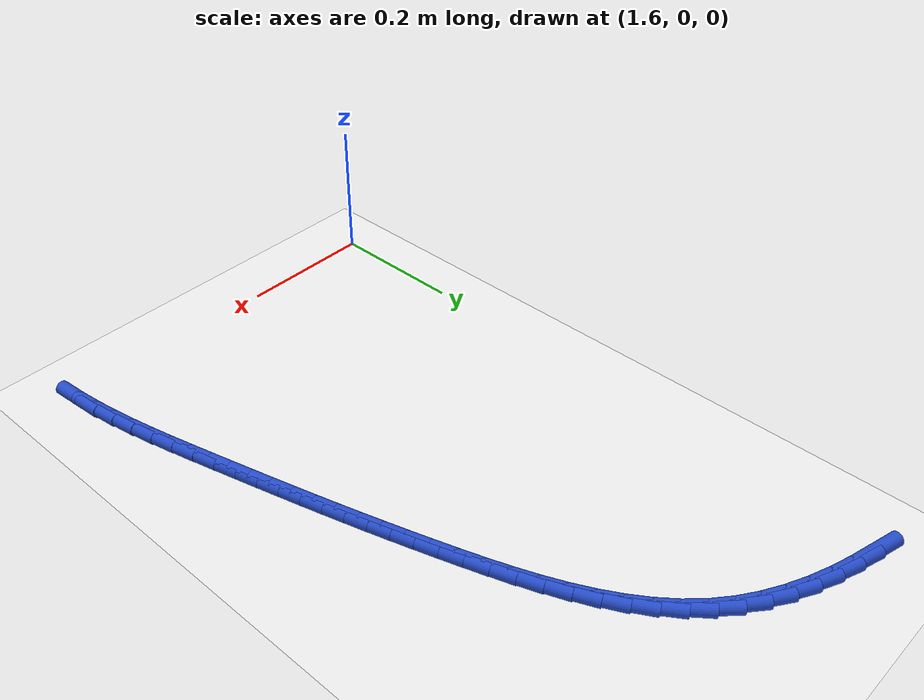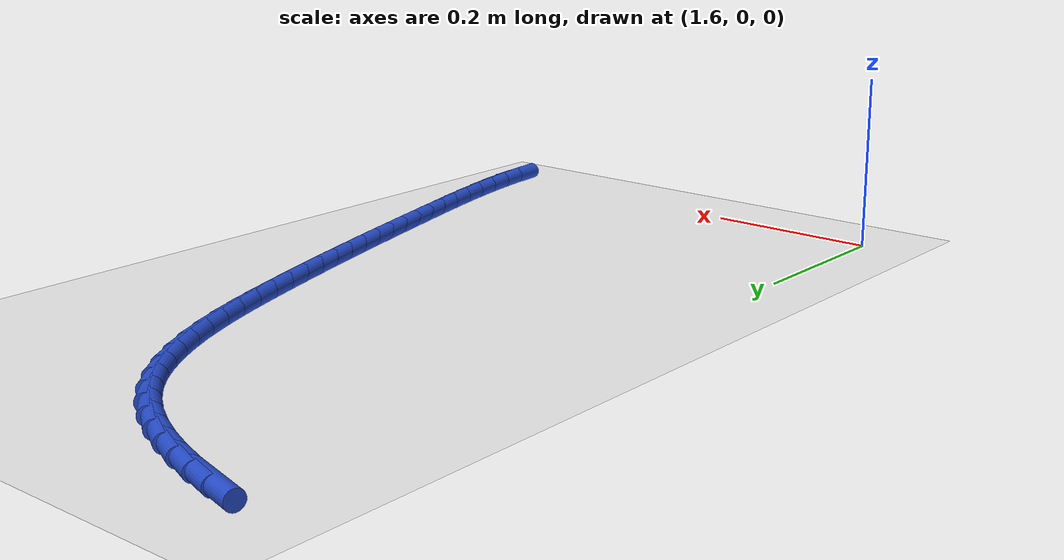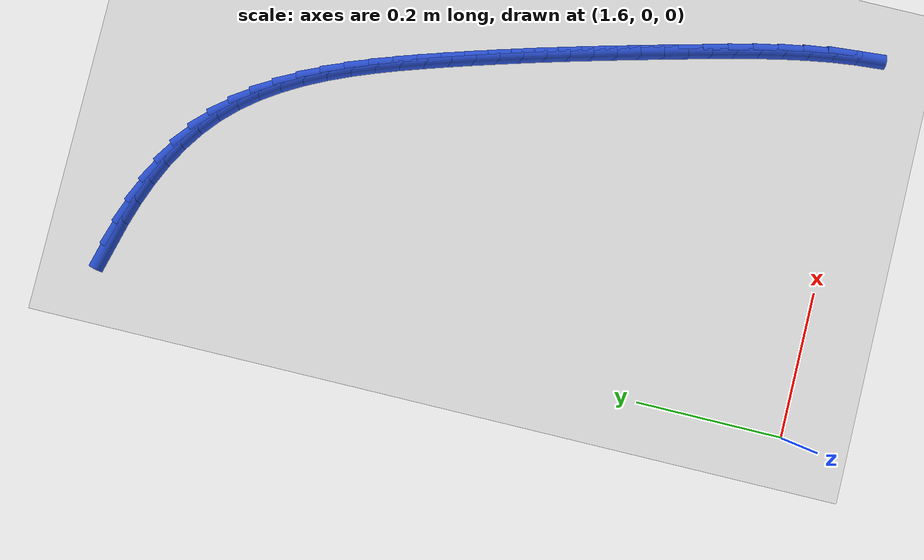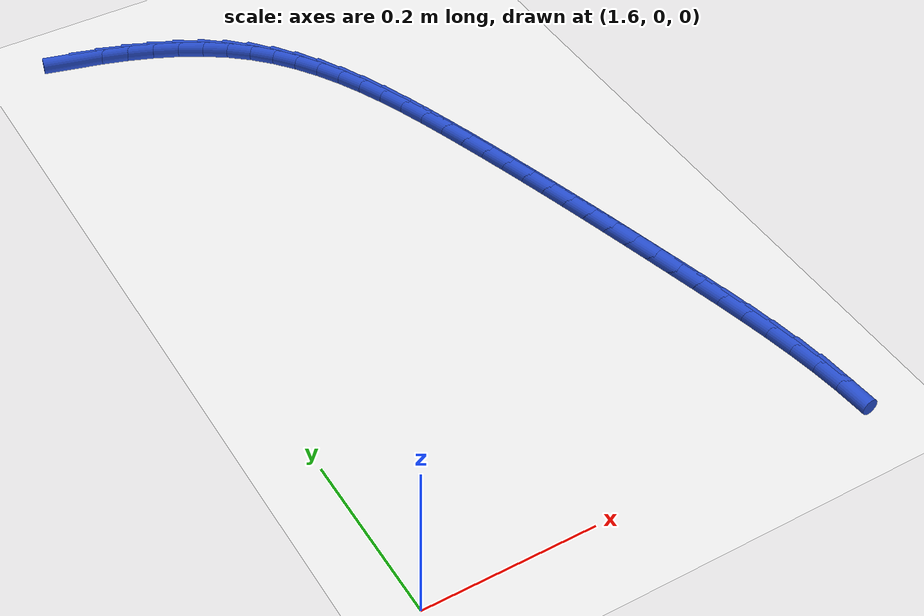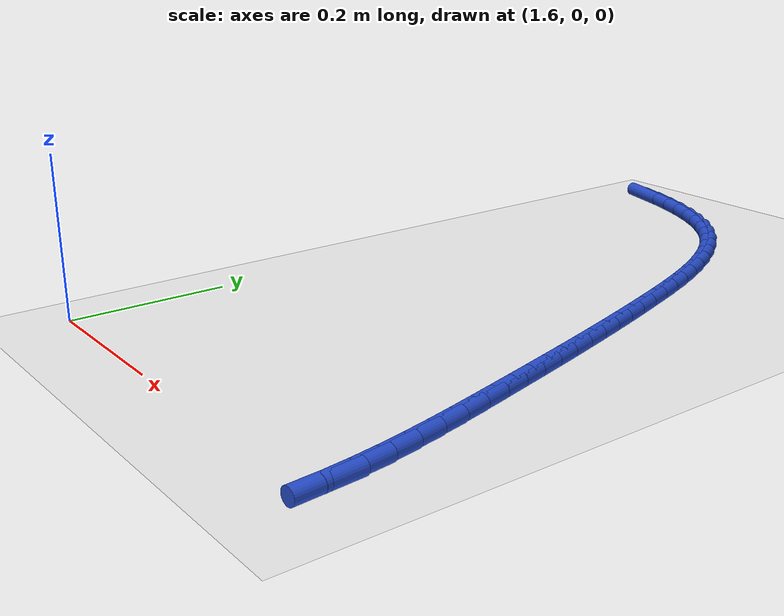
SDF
<sdf version="1.6">
 <world name="default">
  <model name="ground_plane">
   <static>1</static>
   <link name="link">
    <collision name="collision">
     <geometry><plane><normal>0 0 1</normal><size>100 100</size></plane></geometry>
     <surface><friction><ode><mu>100</mu><mu2>50</mu2></ode></friction></surface>
    </collision>
    <visual name="visual">
     <cast_shadows>0</cast_shadows>
     <geometry><plane><normal>0 0 1</normal><size>100 100</size></plane></geometry>
     <material>
      <script><uri>file://media/materials/scripts/gazebo.material</uri><name>Gazebo/WhiteGlow</name></script>
     </material>
    </visual>
   </link>
  </model>
  <model name="line">
   <link name="link_70">
    <pose>1.6430786663684256 0.9417009890963415 0.01 0 1.57 -0.2524663910348437</pose>
    <collision name="collision">
     <geometry><cylinder><radius>0.01</radius><length>0.08</length></cylinder></geometry>
    </collision>
    <visual name="visual">
     <material>
      <script><name>Gazebo/Blue</name><uri>file://media/materials/scripts/gazebo.material</uri></script>
     </material>
     <geometry><cylinder><radius>0.01</radius><length>0.08</length></cylinder></geometry>
    </visual>
   </link>
   <link name="link_71">
    <pose>1.6753227220631297 0.9333829648782509 0.01 0 1.57 -0.3049659807308782</pose>
    <collision name="collision">
     <geometry><cylinder><radius>0.01</radius><length>0.08</length></cylinder></geometry>
    </collision>
    <visual name="visual">
     <material>
      <script><name>Gazebo/Blue</name><uri>file://media/materials/scripts/gazebo.material</uri></script>
     </material>
     <geometry><cylinder><radius>0.01</radius><length>0.08</length></cylinder></geometry>
    </visual>
   </link>
   <link name="link_72">
    <pose>1.7069149437839555 0.9234381809567971 0.01 0 1.57 -0.3648308515365833</pose>
    <collision name="collision">
     <geometry><cylinder><radius>0.01</radius><length>0.08</length></cylinder></geometry>
    </collision>
    <visual name="visual">
     <material>
      <script><name>Gazebo/Blue</name><uri>file://media/materials/scripts/gazebo.material</uri></script>
     </material>
     <geometry><cylinder><radius>0.01</radius><length>0.08</length></cylinder></geometry>
    </visual>
   </link>
   <link name="link_73">
    <pose>1.7375704813057076 0.911729965957451 0.01 0 1.57 -0.43306276915349406</pose>
    <collision name="collision">
     <geometry><cylinder><radius>0.01</radius><length>0.08</length></cylinder></geometry>
    </collision>
    <visual name="visual">
     <material>
      <script><name>Gazebo/Blue</name><uri>file://media/materials/scripts/gazebo.material</uri></script>
     </material>
     <geometry><cylinder><radius>0.01</radius><length>0.08</length></cylinder></geometry>
    </visual>
   </link>
   <link name="link_74">
    <pose>1.7670044844031894 0.898121648505685 0.01 0 1.57 -0.5106416367463223</pose>
    <collision name="collision">
     <geometry><cylinder><radius>0.01</radius><length>0.08</length></cylinder></geometry>
    </collision>
    <visual name="visual">
     <material>
      <script><name>Gazebo/Blue</name><uri>file://media/materials/scripts/gazebo.material</uri></script>
     </material>
     <geometry><cylinder><radius>0.01</radius><length>0.08</length></cylinder></geometry>
    </visual>
   </link>
   <link name="link_75">
    <pose>1.7949321028512037 0.8824765572269694 0.01 0 1.57 -0.5983738358917429</pose>
    <collision name="collision">
     <geometry><cylinder><radius>0.01</radius><length>0.08</length></cylinder></geometry>
    </collision>
    <visual name="visual">
     <material>
      <script><name>Gazebo/Blue</name><uri>file://media/materials/scripts/gazebo.material</uri></script>
     </material>
     <geometry><cylinder><radius>0.01</radius><length>0.08</length></cylinder></geometry>
    </visual>
   </link>
   <link name="link_76">
    <pose>1.8210684864245552 0.8646580207467754 0.01 0 1.57 -0.6966565141751326</pose>
    <collision name="collision">
     <geometry><cylinder><radius>0.01</radius><length>0.08</length></cylinder></geometry>
    </collision>
    <visual name="visual">
     <material>
      <script><name>Gazebo/Blue</name><uri>file://media/materials/scripts/gazebo.material</uri></script>
     </material>
     <geometry><cylinder><radius>0.01</radius><length>0.08</length></cylinder></geometry>
    </visual>
   </link>
   <link name="link_77">
    <pose>1.8451288285941922 0.8445294058192063 0.01 0 1.57 -0.800853707199921</pose>
    <collision name="collision">
     <geometry><cylinder><radius>0.01</radius><length>0.08</length></cylinder></geometry>
    </collision>
    <visual name="visual">
     <material>
      <script><name>Gazebo/Blue</name><uri>file://media/materials/scripts/gazebo.material</uri></script>
     </material>
     <geometry><cylinder><radius>0.01</radius><length>0.08</length></cylinder></geometry>
    </visual>
   </link>
   <link name="link_78">
    <pose>1.8669304731799221 0.8220432141323843 0.01 0 1.57 -0.896264361814733</pose>
    <collision name="collision">
     <geometry><cylinder><radius>0.01</radius><length>0.08</length></cylinder></geometry>
    </collision>
    <visual name="visual">
     <material>
      <script><name>Gazebo/Blue</name><uri>file://media/materials/scripts/gazebo.material</uri></script>
     </material>
     <geometry><cylinder><radius>0.01</radius><length>0.08</length></cylinder></geometry>
    </visual>
   </link>
   <link name="link_79">
    <pose>1.8866112982026828 0.7974316409358165 0.01 0 1.57 -0.9794710617785285</pose>
    <collision name="collision">
     <geometry><cylinder><radius>0.01</radius><length>0.08</length></cylinder></geometry>
    </collision>
    <visual name="visual">
     <material>
      <script><name>Gazebo/Blue</name><uri>file://media/materials/scripts/gazebo.material</uri></script>
     </material>
     <geometry><cylinder><radius>0.01</radius><length>0.08</length></cylinder></geometry>
    </visual>
   </link>
   <link name="link_80">
    <pose>1.9043718871836628 0.77098159740206 0.01 0 1.57 -1.0505734589829416</pose>
    <collision name="collision">
     <geometry><cylinder><radius>0.01</radius><length>0.08</length></cylinder></geometry>
    </collision>
    <visual name="visual">
     <material>
      <script><name>Gazebo/Blue</name><uri>file://media/materials/scripts/gazebo.material</uri></script>
     </material>
     <geometry><cylinder><radius>0.01</radius><length>0.08</length></cylinder></geometry>
    </visual>
   </link>
   <link name="link_81">
    <pose>1.9204128236440527 0.7429799947036715 0.01 0 1.57 -1.1101946010710217</pose>
    <collision name="collision">
     <geometry><cylinder><radius>0.01</radius><length>0.08</length></cylinder></geometry>
    </collision>
    <visual name="visual">
     <material>
      <script><name>Gazebo/Blue</name><uri>file://media/materials/scripts/gazebo.material</uri></script>
     </material>
     <geometry><cylinder><radius>0.01</radius><length>0.08</length></cylinder></geometry>
    </visual>
   </link>
   <link name="link_82">
    <pose>1.9349346911050418 0.7137137440132076 0.01 0 1.57 -1.1591732860625918</pose>
    <collision name="collision">
     <geometry><cylinder><radius>0.01</radius><length>0.08</length></cylinder></geometry>
    </collision>
    <visual name="visual">
     <material>
      <script><name>Gazebo/Blue</name><uri>file://media/materials/scripts/gazebo.material</uri></script>
     </material>
     <geometry><cylinder><radius>0.01</radius><length>0.08</length></cylinder></geometry>
    </visual>
   </link>
   <link name="link_83">
    <pose>1.9481380730878202 0.6834697565032264 0.01 0 1.57 -1.1983538861379925</pose>
    <collision name="collision">
     <geometry><cylinder><radius>0.01</radius><length>0.08</length></cylinder></geometry>
    </collision>
    <visual name="visual">
     <material>
      <script><name>Gazebo/Blue</name><uri>file://media/materials/scripts/gazebo.material</uri></script>
     </material>
     <geometry><cylinder><radius>0.01</radius><length>0.08</length></cylinder></geometry>
    </visual>
   </link>
   <link name="link_84">
    <pose>1.9602235531135768 0.6525349433462837 0.01 0 1.57 -1.2284585722076924</pose>
    <collision name="collision">
     <geometry><cylinder><radius>0.01</radius><length>0.08</length></cylinder></geometry>
    </collision>
    <visual name="visual">
     <material>
      <script><name>Gazebo/Blue</name><uri>file://media/materials/scripts/gazebo.material</uri></script>
     </material>
     <geometry><cylinder><radius>0.01</radius><length>0.08</length></cylinder></geometry>
    </visual>
   </link>
   <link name="link_85">
    <pose>1.9713917147035023 0.6211962157149366 0.01 0 1.57 -1.2500136431465538</pose>
    <collision name="collision">
     <geometry><cylinder><radius>0.01</radius><length>0.08</length></cylinder></geometry>
    </collision>
    <visual name="visual">
     <material>
      <script><name>Gazebo/Blue</name><uri>file://media/materials/scripts/gazebo.material</uri></script>
     </material>
     <geometry><cylinder><radius>0.01</radius><length>0.08</length></cylinder></geometry>
    </visual>
   </link>
   <link name="link_86">
    <pose>1.9818431413787851 0.5897404847817422 0.01 0 1.57 -1.2633660580823134</pose>
    <collision name="collision">
     <geometry><cylinder><radius>0.01</radius><length>0.08</length></cylinder></geometry>
    </collision>
    <visual name="visual">
     <material>
      <script><name>Gazebo/Blue</name><uri>file://media/materials/scripts/gazebo.material</uri></script>
     </material>
     <geometry><cylinder><radius>0.01</radius><length>0.08</length></cylinder></geometry>
    </visual>
   </link>
   <link name="link_87">
    <pose>1.9917771959486954 0.5584517709949424 0.01 0 1.57 -1.2716342790600534</pose>
    <collision name="collision">
     <geometry><cylinder><radius>0.01</radius><length>0.08</length></cylinder></geometry>
    </collision>
    <visual name="visual">
     <material>
      <script><name>Gazebo/Blue</name><uri>file://media/materials/scripts/gazebo.material</uri></script>
     </material>
     <geometry><cylinder><radius>0.01</radius><length>0.08</length></cylinder></geometry>
    </visual>
   </link>
   <link name="link_88">
    <pose>2.0013324791103844 0.5274702062144678 0.01 0 1.57 -1.2791920324950457</pose>
    <collision name="collision">
     <geometry><cylinder><radius>0.01</radius><length>0.08</length></cylinder></geometry>
    </collision>
    <visual name="visual">
     <material>
      <script><name>Gazebo/Blue</name><uri>file://media/materials/scripts/gazebo.material</uri></script>
     </material>
     <geometry><cylinder><radius>0.01</radius><length>0.08</length></cylinder></geometry>
    </visual>
   </link>
   <link name="link_89">
    <pose>2.010559961263603 0.49672840812165353 0.01 0 1.57 -1.2863081202444147</pose>
    <collision name="collision">
     <geometry><cylinder><radius>0.01</radius><length>0.08</length></cylinder></geometry>
    </collision>
    <visual name="visual">
     <material>
      <script><name>Gazebo/Blue</name><uri>file://media/materials/scripts/gazebo.material</uri></script>
     </material>
     <geometry><cylinder><radius>0.01</radius><length>0.08</length></cylinder></geometry>
    </visual>
   </link>
   <link name="link_90">
    <pose>2.0195037915845955 0.46614284130197825 0.01 0 1.57 -1.2929098659598606</pose>
    <collision name="collision">
     <geometry><cylinder><radius>0.01</radius><length>0.08</length></cylinder></geometry>
    </collision>
    <visual name="visual">
     <material>
      <script><name>Gazebo/Blue</name><uri>file://media/materials/scripts/gazebo.material</uri></script>
     </material>
     <geometry><cylinder><radius>0.01</radius><length>0.08</length></cylinder></geometry>
    </visual>
   </link>
   <link name="link_91">
    <pose>2.0282081192496015 0.4356299703409211 0.01 0 1.57 -1.298932232212982</pose>
    <collision name="collision">
     <geometry><cylinder><radius>0.01</radius><length>0.08</length></cylinder></geometry>
    </collision>
    <visual name="visual">
     <material>
      <script><name>Gazebo/Blue</name><uri>file://media/materials/scripts/gazebo.material</uri></script>
     </material>
     <geometry><cylinder><radius>0.01</radius><length>0.08</length></cylinder></geometry>
    </visual>
   </link>
   <link name="link_92">
    <pose>2.0367170934348646 0.40510625982396126 0.01 0 1.57 -1.3043198552521753</pose>
    <collision name="collision">
     <geometry><cylinder><radius>0.01</radius><length>0.08</length></cylinder></geometry>
    </collision>
    <visual name="visual">
     <material>
      <script><name>Gazebo/Blue</name><uri>file://media/materials/scripts/gazebo.material</uri></script>
     </material>
     <geometry><cylinder><radius>0.01</radius><length>0.08</length></cylinder></geometry>
    </visual>
   </link>
   <link name="link_93">
    <pose>2.0450748633166267 0.3744881743365785 0.01 0 1.57 -1.309028673989975</pose>
    <collision name="collision">
     <geometry><cylinder><radius>0.01</radius><length>0.08</length></cylinder></geometry>
    </collision>
    <visual name="visual">
     <material>
      <script><name>Gazebo/Blue</name><uri>file://media/materials/scripts/gazebo.material</uri></script>
     </material>
     <geometry><cylinder><radius>0.01</radius><length>0.08</length></cylinder></geometry>
    </visual>
   </link>
   <link name="link_94">
    <pose>2.0533255780711293 0.3436921784642519 0.01 0 1.57 -1.313027056629133</pose>
    <collision name="collision">
     <geometry><cylinder><radius>0.01</radius><length>0.08</length></cylinder></geometry>
    </collision>
    <visual name="visual">
     <material>
      <script><name>Gazebo/Blue</name><uri>file://media/materials/scripts/gazebo.material</uri></script>
     </material>
     <geometry><cylinder><radius>0.01</radius><length>0.08</length></cylinder></geometry>
    </visual>
   </link>
   <link name="link_95">
    <pose>2.0615133868746147 0.31263473679246023 0.01 0 1.57 -1.3162963697528909</pose>
    <collision name="collision">
     <geometry><cylinder><radius>0.01</radius><length>0.08</length></cylinder></geometry>
    </collision>
    <visual name="visual">
     <material>
      <script><name>Gazebo/Blue</name><uri>file://media/materials/scripts/gazebo.material</uri></script>
     </material>
     <geometry><cylinder><radius>0.01</radius><length>0.08</length></cylinder></geometry>
    </visual>
   </link>
   <link name="link_96">
    <pose>2.069682438903324 0.28123231390668346 0.01 0 1.57 -1.3188309800878408</pose>
    <collision name="collision">
     <geometry><cylinder><radius>0.01</radius><length>0.08</length></cylinder></geometry>
    </collision>
    <visual name="visual">
     <material>
      <script><name>Gazebo/Blue</name><uri>file://media/materials/scripts/gazebo.material</uri></script>
     </material>
     <geometry><cylinder><radius>0.01</radius><length>0.08</length></cylinder></geometry>
    </visual>
   </link>
   <link name="link_97">
    <pose>2.0778768833335013 0.24940137439240057 0.01 0 1.57 -1.3211867419211731</pose>
    <collision name="collision">
     <geometry><cylinder><radius>0.01</radius><length>0.08</length></cylinder></geometry>
    </collision>
    <visual name="visual">
     <material>
      <script><name>Gazebo/Blue</name><uri>file://media/materials/scripts/gazebo.material</uri></script>
     </material>
     <geometry><cylinder><radius>0.01</radius><length>0.08</length></cylinder></geometry>
    </visual>
   </link>
   <link name="link_98">
    <pose>2.086117661757846 0.2170752270826604 0.01 0 1.57 -1.3274167693040453</pose>
    <collision name="collision">
     <geometry><cylinder><radius>0.01</radius><length>0.08</length></cylinder></geometry>
    </collision>
    <visual name="visual">
     <material>
      <script><name>Gazebo/Blue</name><uri>file://media/materials/scripts/gazebo.material</uri></script>
     </material>
     <geometry><cylinder><radius>0.01</radius><length>0.08</length></cylinder></geometry>
    </visual>
   </link>
   <link name="link_99">
    <pose>2.0942526224229137 0.18431281332929716 0.01 0 1.57 -1.339288706235089</pose>
    <collision name="collision">
     <geometry><cylinder><radius>0.01</radius><length>0.08</length></cylinder></geometry>
    </collision>
    <visual name="visual">
     <material>
      <script><name>Gazebo/Blue</name><uri>file://media/materials/scripts/gazebo.material</uri></script>
     </material>
     <geometry><cylinder><radius>0.01</radius><length>0.08</length></cylinder></geometry>
    </visual>
   </link>
   <link name="link_100">
    <pose>2.102051412087874 0.1512298337418025 0.01 0 1.57 -1.3568660119560731</pose>
    <collision name="collision">
     <geometry><cylinder><radius>0.01</radius><length>0.08</length></cylinder></geometry>
    </collision>
    <visual name="visual">
     <material>
      <script><name>Gazebo/Blue</name><uri>file://media/materials/scripts/gazebo.material</uri></script>
     </material>
     <geometry><cylinder><radius>0.01</radius><length>0.08</length></cylinder></geometry>
    </visual>
   </link>
   <link name="link_101">
    <pose>2.109283295141774 0.11794226645692603 0.01 0 1.57 -1.3803531507674085</pose>
    <collision name="collision">
     <geometry><cylinder><radius>0.01</radius><length>0.08</length></cylinder></geometry>
    </collision>
    <visual name="visual">
     <material>
      <script><name>Gazebo/Blue</name><uri>file://media/materials/scripts/gazebo.material</uri></script>
     </material>
     <geometry><cylinder><radius>0.01</radius><length>0.08</length></cylinder></geometry>
    </visual>
   </link>
   <link name="link_102">
    <pose>2.11571753597366 0.08456608961141851 0.01 0 1.57 -1.4100935373600814</pose>
    <collision name="collision">
     <geometry><cylinder><radius>0.01</radius><length>0.08</length></cylinder></geometry>
    </collision>
    <visual name="visual">
     <material>
      <script><name>Gazebo/Blue</name><uri>file://media/materials/scripts/gazebo.material</uri></script>
     </material>
     <geometry><cylinder><radius>0.01</radius><length>0.08</length></cylinder></geometry>
    </visual>
   </link>
   <link name="link_103">
    <pose>2.1211233989725797 0.05121728134202945 0.01 0 1.57 -1.4465579602359497</pose>
    <collision name="collision">
     <geometry><cylinder><radius>0.01</radius><length>0.08</length></cylinder></geometry>
    </collision>
    <visual name="visual">
     <material>
      <script><name>Gazebo/Blue</name><uri>file://media/materials/scripts/gazebo.material</uri></script>
     </material>
     <geometry><cylinder><radius>0.01</radius><length>0.08</length></cylinder></geometry>
    </visual>
   </link>
   <link name="link_104">
    <pose>2.125270148527579 0.0180118197855088 0.01 0 1.57 -1.4903267029822753</pose>
    <collision name="collision">
     <geometry><cylinder><radius>0.01</radius><length>0.08</length></cylinder></geometry>
    </collision>
    <visual name="visual">
     <material>
      <script><name>Gazebo/Blue</name><uri>file://media/materials/scripts/gazebo.material</uri></script>
     </material>
     <geometry><cylinder><radius>0.01</radius><length>0.08</length></cylinder></geometry>
    </visual>
   </link>
  </model>
 </world>
</sdf>
